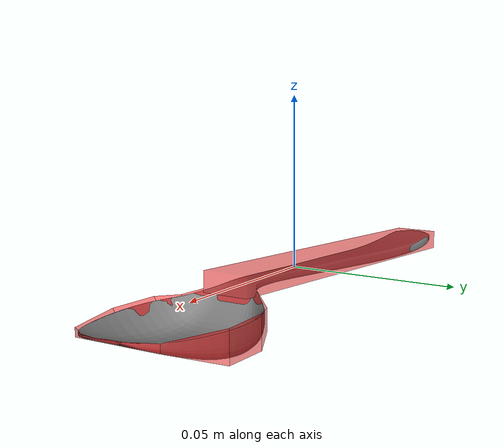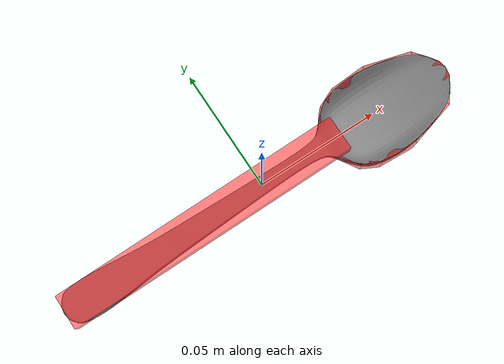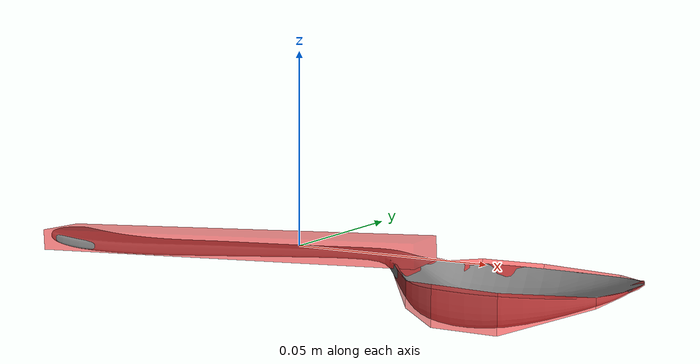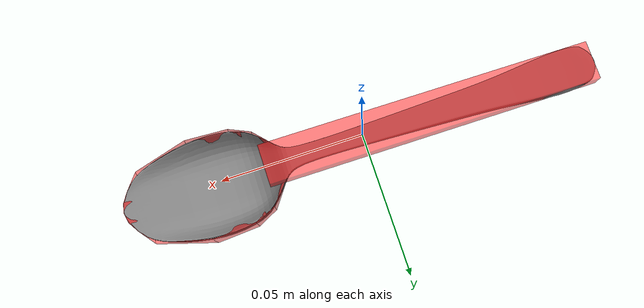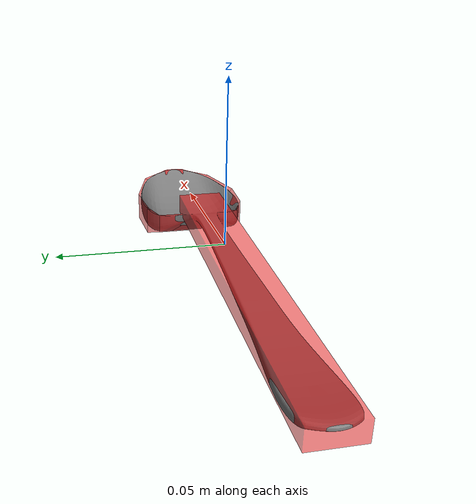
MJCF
<mujoco model="spoon">
	<compiler meshdir="../meshes/" angle="radian" autolimits="true" balanceinertia="true"
		boundmass="0.000001" boundinertia="0.000001" />
	<asset>
		<mesh name="SM_Spoon_visual1d01d01d0" file="obj/SM_Spoon.obj" />
		<mesh name="SM_Spoon_1_collision1d01d01d0" file="stl/SM_Spoon_1.stl" />
		<mesh name="SM_Spoon_2_collision1d01d01d0" file="stl/SM_Spoon_2.stl" />
		<mesh name="SM_Spoon_3_collision1d01d01d0" file="stl/SM_Spoon_3.stl" />
		<mesh name="SM_Spoon_4_collision1d01d01d0" file="stl/SM_Spoon_4.stl" />
		<mesh name="SM_Spoon_5_collision1d01d01d0" file="stl/SM_Spoon_5.stl" />
		<mesh name="SM_Spoon_6_collision1d01d01d0" file="stl/SM_Spoon_6.stl" />
		<mesh name="SM_Spoon_7_collision1d01d01d0" file="stl/SM_Spoon_7.stl" />
		<mesh name="SM_Spoon_8_collision1d01d01d0" file="stl/SM_Spoon_8.stl" />
		<mesh name="SM_Spoon_9_collision1d01d01d0" file="stl/SM_Spoon_9.stl" />
		<mesh name="SM_Spoon_10_collision1d01d01d0" file="stl/SM_Spoon_10.stl" />
		<mesh name="SM_Spoon_11_collision1d01d01d0" file="stl/SM_Spoon_11.stl" />
		<mesh name="SM_Spoon_12_collision1d01d01d0" file="stl/SM_Spoon_12.stl" />
		<mesh name="SM_Spoon_13_collision1d01d01d0" file="stl/SM_Spoon_13.stl" />
		<mesh name="SM_Spoon_14_collision1d01d01d0" file="stl/SM_Spoon_14.stl" />
		<mesh name="SM_Spoon_15_collision1d01d01d0" file="stl/SM_Spoon_15.stl" />
		<mesh name="SM_Spoon_16_collision1d01d01d0" file="stl/SM_Spoon_16.stl" />
		<mesh name="SM_Spoon_17_collision1d01d01d0" file="stl/SM_Spoon_17.stl" />
	</asset>
	<default>
		<default class="visual">
			<geom contype="0" conaffinity="0" />
		</default>
		<default class="collision">
			<geom rgba="1.0 0.0 0.0 0.5" />
		</default>
	</default>
	<worldbody>
		<body name="spoon">
			<freejoint />
			<inertial pos="0.0 0.0 0.0" mass="0.01" diaginertia="0.00001 0.00001 0.00001" />
			<geom name="spoon_visual" pos="0.0 0.0 0.0" quat="1.0 0.0 0.0 0.0" type="mesh"
				mesh="SM_Spoon_visual1d01d01d0" class="visual" />
			<geom name="spoon_collision_0" pos="-0.025 0.0 -0.0015" quat="0 0.6883546 0 0.7253744"
				type="box" size="0.003 0.007 0.06" class="collision" condim="4" solimp="0.99 0.99 0"
				solref="0.01 1" friction="2 0.05 0.01" />
			<geom name="spoon_collision_1" pos="0.0 0.0 0.0" quat="1.0 0.0 0.0 0.0" type="mesh"
				mesh="SM_Spoon_2_collision1d01d01d0" class="collision" />
			<geom name="spoon_collision_2" pos="0.0 0.0 0.0" quat="1.0 0.0 0.0 0.0" type="mesh"
				mesh="SM_Spoon_3_collision1d01d01d0" class="collision" />
			<geom name="spoon_collision_3" pos="0.0 0.0 0.0" quat="1.0 0.0 0.0 0.0" type="mesh"
				mesh="SM_Spoon_4_collision1d01d01d0" class="collision" />
			<geom name="spoon_collision_4" pos="0.0 0.0 0.0" quat="1.0 0.0 0.0 0.0" type="mesh"
				mesh="SM_Spoon_5_collision1d01d01d0" class="collision" />
			<geom name="spoon_collision_5" pos="0.0 0.0 0.0" quat="1.0 0.0 0.0 0.0" type="mesh"
				mesh="SM_Spoon_6_collision1d01d01d0" class="collision" />
			<geom name="spoon_collision_6" pos="0.0 0.0 0.0" quat="1.0 0.0 0.0 0.0" type="mesh"
				mesh="SM_Spoon_7_collision1d01d01d0" class="collision" />
			<geom name="spoon_collision_7" pos="0.0 0.0 0.0" quat="1.0 0.0 0.0 0.0" type="mesh"
				mesh="SM_Spoon_8_collision1d01d01d0" class="collision" />
			<geom name="spoon_collision_8" pos="0.0 0.0 0.0" quat="1.0 0.0 0.0 0.0" type="mesh"
				mesh="SM_Spoon_9_collision1d01d01d0" class="collision" />
			<geom name="spoon_collision_9" pos="0.0 0.0 0.0" quat="1.0 0.0 0.0 0.0" type="mesh"
				mesh="SM_Spoon_10_collision1d01d01d0" class="collision" />
			<geom name="spoon_collision_10" pos="0.0 0.0 0.0" quat="1.0 0.0 0.0 0.0" type="mesh"
				mesh="SM_Spoon_11_collision1d01d01d0" class="collision" />
			<geom name="spoon_collision_11" pos="0.0 0.0 0.0" quat="1.0 0.0 0.0 0.0" type="mesh"
				mesh="SM_Spoon_12_collision1d01d01d0" class="collision" />
			<geom name="spoon_collision_12" pos="0.0 0.0 0.0" quat="1.0 0.0 0.0 0.0" type="mesh"
				mesh="SM_Spoon_13_collision1d01d01d0" class="collision" />
			<geom name="spoon_collision_13" pos="0.0 0.0 0.0" quat="1.0 0.0 0.0 0.0" type="mesh"
				mesh="SM_Spoon_14_collision1d01d01d0" class="collision" />
			<geom name="spoon_collision_14" pos="0.0 0.0 0.0" quat="1.0 0.0 0.0 0.0" type="mesh"
				mesh="SM_Spoon_15_collision1d01d01d0" class="collision" />
			<geom name="spoon_collision_15" pos="0.0 0.0 0.0" quat="1.0 0.0 0.0 0.0" type="mesh"
				mesh="SM_Spoon_16_collision1d01d01d0" class="collision" />
			<geom name="spoon_collision_16" pos="0.0 0.0 0.0" quat="1.0 0.0 0.0 0.0" type="mesh"
				mesh="SM_Spoon_17_collision1d01d01d0" class="collision" />
		</body>
	</worldbody>
</mujoco>
